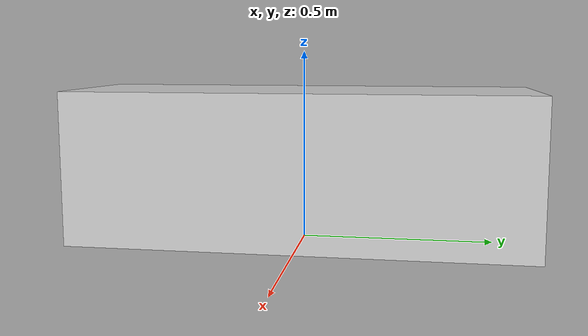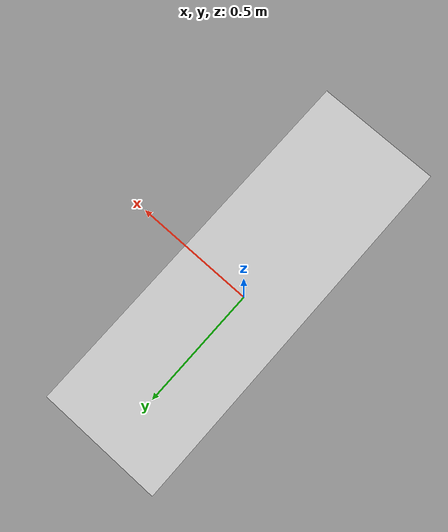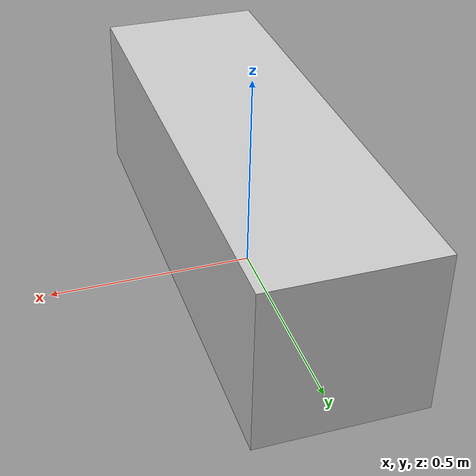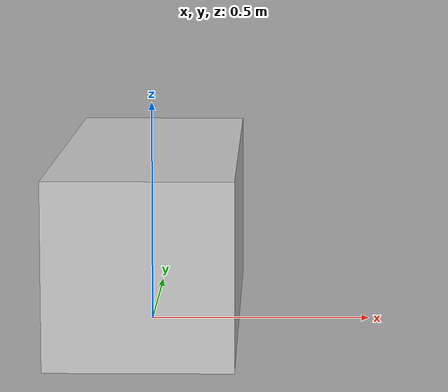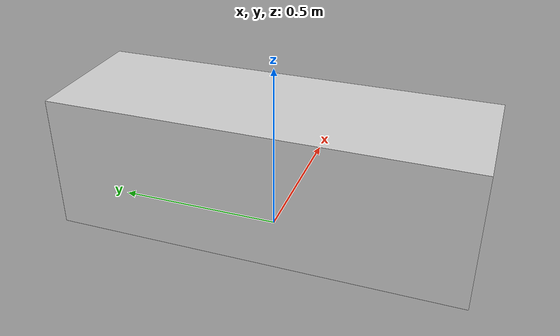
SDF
<?xml version="1.0"?>
<sdf version="1.6">
  <model name="ddw/salon">
    <link name="1_link">
      <collision name="1_col">
        <geometry>
          <box>
            <size>0.4 1.2 0.4</size>
          </box>
        </geometry>
      </collision>
      <visual name="1_vis">
        <geometry>
          <box>
            <size>0.4 1.2 0.4</size>
          </box>
        </geometry>
        <material>
          <ambient>0.8 0.8 0.8 1</ambient>
        </material>
      </visual>
      <pose>0 0 0.2 0 0 0</pose>
    </link>
    <link name="in_front_of">
      <virtual_volume name="in_front_of_vv">
        <geometry>
          <box>
            <size>0.9 0.6 0.01</size>
          </box>
        </geometry>
        <pose>0.45 0.0 0.005 0 0 0</pose>
      </virtual_volume>
    </link>
    <link name="on_top_of">
      <virtual_volume name="on_top_of_vv">
        <geometry>
          <box>
            <size>0.38 1.18 0.4</size>
          </box>
        </geometry>
        <pose>0.0 0.0 0.62 0 0 0</pose>
      </virtual_volume>
    </link>
    <static>true</static>
  </model>
</sdf>
